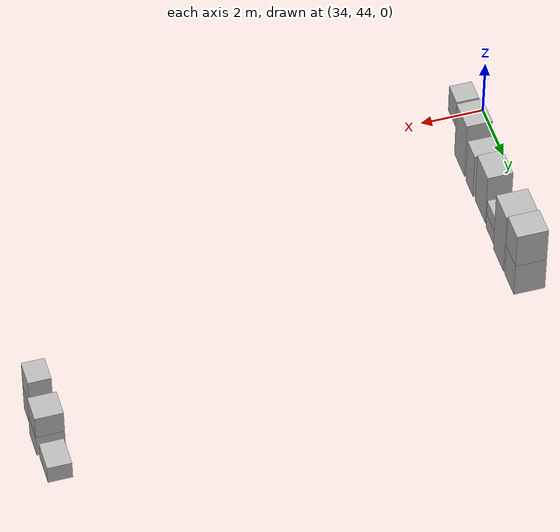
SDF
<sdf version="1.5">
 <world name="default">
  <model name="ground_plane">
   <static>true</static>
   <link name="link">
    <collision name="collision">
     <geometry><plane><normal>0 0 1</normal><size>250 250</size></plane></geometry>
     <surface><friction><ode><mu>1</mu><mu2>1</mu2></ode></friction></surface>
    </collision>
    <visual name="grass">
     <cast_shadows>false</cast_shadows>
     <geometry><mesh><uri>file://grass_plane/meshes/grass_plane.dae</uri></mesh></geometry>
    </visual>
   </link>
  </model>
  <model name="Cardboard_box_top_640">
   <link name="link_0">
    <pose>35 45 1.03619564257 0 0 0</pose>
    <inertial>
     <mass>1</mass>
     <inertia>
      <ixx>0.166667</ixx>
      <ixy>0</ixy>
      <ixz>0</ixz>
      <iyy>0.166667</iyy>
      <iyz>0</iyz>
      <izz>0.166667</izz>
     </inertia>
    </inertial>
    <collision name="collision">
     <geometry>
      <mesh>
       <uri>model://Cardboard_box/meshes/cardboard_box.dae</uri>
       <scale>1.7727442685 1.81373828049 2.59048910642</scale>
      </mesh>
     </geometry>
    </collision>
    <visual name="visual">
     <geometry>
      <mesh>
       <uri>model://Cardboard_box/meshes/cardboard_box.dae</uri>
       <scale>1.7727442685 1.81373828049 2.59048910642</scale>
      </mesh>
     </geometry>
    </visual>
   </link>
   <static>1</static>
  </model>
  <model name="Cardboard_box_641">
   <link name="link_0">
    <pose>35 46 0 0 0 0</pose>
    <inertial>
     <mass>1</mass>
     <inertia>
      <ixx>0.166667</ixx>
      <ixy>0</ixy>
      <ixz>0</ixz>
      <iyy>0.166667</iyy>
      <iyz>0</iyz>
      <izz>0.166667</izz>
     </inertia>
    </inertial>
    <collision name="collision">
     <geometry>
      <mesh>
       <uri>model://Cardboard_box/meshes/cardboard_box.dae</uri>
       <scale>2.02842144895 2.48058564449 5.44605178965</scale>
      </mesh>
     </geometry>
    </collision>
    <visual name="visual">
     <geometry>
      <mesh>
       <uri>model://Cardboard_box/meshes/cardboard_box.dae</uri>
       <scale>2.02842144895 2.48058564449 5.44605178965</scale>
      </mesh>
     </geometry>
    </visual>
   </link>
   <static>1</static>
  </model>
  <model name="Cardboard_box_642">
   <link name="link_0">
    <pose>35 47 0 0 0 0</pose>
    <inertial>
     <mass>1</mass>
     <inertia>
      <ixx>0.166667</ixx>
      <ixy>0</ixy>
      <ixz>0</ixz>
      <iyy>0.166667</iyy>
      <iyz>0</iyz>
      <izz>0.166667</izz>
     </inertia>
    </inertial>
    <collision name="collision">
     <geometry>
      <mesh>
       <uri>model://Cardboard_box/meshes/cardboard_box.dae</uri>
       <scale>2.08091185509 1.72966626313 4.2891665481</scale>
      </mesh>
     </geometry>
    </collision>
    <visual name="visual">
     <geometry>
      <mesh>
       <uri>model://Cardboard_box/meshes/cardboard_box.dae</uri>
       <scale>2.08091185509 1.72966626313 4.2891665481</scale>
      </mesh>
     </geometry>
    </visual>
   </link>
   <static>1</static>
  </model>
  <model name="Cardboard_box_643">
   <link name="link_0">
    <pose>35 48 0 0 0 0</pose>
    <inertial>
     <mass>1</mass>
     <inertia>
      <ixx>0.166667</ixx>
      <ixy>0</ixy>
      <ixz>0</ixz>
      <iyy>0.166667</iyy>
      <iyz>0</iyz>
      <izz>0.166667</izz>
     </inertia>
    </inertial>
    <collision name="collision">
     <geometry>
      <mesh>
       <uri>model://Cardboard_box/meshes/cardboard_box.dae</uri>
       <scale>1.99773901196 2.46404920744 4.91384270036</scale>
      </mesh>
     </geometry>
    </collision>
    <visual name="visual">
     <geometry>
      <mesh>
       <uri>model://Cardboard_box/meshes/cardboard_box.dae</uri>
       <scale>1.99773901196 2.46404920744 4.91384270036</scale>
      </mesh>
     </geometry>
    </visual>
   </link>
   <static>1</static>
  </model>
  <model name="Cardboard_box_644">
   <link name="link_0">
    <pose>35 49 0 0 0 0</pose>
    <inertial>
     <mass>1</mass>
     <inertia>
      <ixx>0.166667</ixx>
      <ixy>0</ixy>
      <ixz>0</ixz>
      <iyy>0.166667</iyy>
      <iyz>0</iyz>
      <izz>0.166667</izz>
     </inertia>
    </inertial>
    <collision name="collision">
     <geometry>
      <mesh>
       <uri>model://Cardboard_box/meshes/cardboard_box.dae</uri>
       <scale>2.15853517267 1.83536087983 1.4387977736</scale>
      </mesh>
     </geometry>
    </collision>
    <visual name="visual">
     <geometry>
      <mesh>
       <uri>model://Cardboard_box/meshes/cardboard_box.dae</uri>
       <scale>2.15853517267 1.83536087983 1.4387977736</scale>
      </mesh>
     </geometry>
    </visual>
   </link>
   <static>1</static>
  </model>
  <model name="Cardboard_box_top_644">
   <link name="link_0">
    <pose>35 49 0.57551910944 0 0 0</pose>
    <inertial>
     <mass>1</mass>
     <inertia>
      <ixx>0.166667</ixx>
      <ixy>0</ixy>
      <ixz>0</ixz>
      <iyy>0.166667</iyy>
      <iyz>0</iyz>
      <izz>0.166667</izz>
     </inertia>
    </inertial>
    <collision name="collision">
     <geometry>
      <mesh>
       <uri>model://Cardboard_box/meshes/cardboard_box.dae</uri>
       <scale>2.15853517267 1.83536087983 1.4387977736</scale>
      </mesh>
     </geometry>
    </collision>
    <visual name="visual">
     <geometry>
      <mesh>
       <uri>model://Cardboard_box/meshes/cardboard_box.dae</uri>
       <scale>2.15853517267 1.83536087983 1.4387977736</scale>
      </mesh>
     </geometry>
    </visual>
   </link>
   <static>1</static>
  </model>
  <model name="Cardboard_box_645">
   <link name="link_0">
    <pose>35 50 0 0 0 0</pose>
    <inertial>
     <mass>1</mass>
     <inertia>
      <ixx>0.166667</ixx>
      <ixy>0</ixy>
      <ixz>0</ixz>
      <iyy>0.166667</iyy>
      <iyz>0</iyz>
      <izz>0.166667</izz>
     </inertia>
    </inertial>
    <collision name="collision">
     <geometry>
      <mesh>
       <uri>model://Cardboard_box/meshes/cardboard_box.dae</uri>
       <scale>2.45480826596 2.39421072906 5.83259460459</scale>
      </mesh>
     </geometry>
    </collision>
    <visual name="visual">
     <geometry>
      <mesh>
       <uri>model://Cardboard_box/meshes/cardboard_box.dae</uri>
       <scale>2.45480826596 2.39421072906 5.83259460459</scale>
      </mesh>
     </geometry>
    </visual>
   </link>
   <static>1</static>
  </model>
  <model name="Cardboard_box_646">
   <link name="link_0">
    <pose>35 51 0 0 0 0</pose>
    <inertial>
     <mass>1</mass>
     <inertia>
      <ixx>0.166667</ixx>
      <ixy>0</ixy>
      <ixz>0</ixz>
      <iyy>0.166667</iyy>
      <iyz>0</iyz>
      <izz>0.166667</izz>
     </inertia>
    </inertial>
    <collision name="collision">
     <geometry>
      <mesh>
       <uri>model://Cardboard_box/meshes/cardboard_box.dae</uri>
       <scale>2.42336370489 2.16187229272 3.1173830822</scale>
      </mesh>
     </geometry>
    </collision>
    <visual name="visual">
     <geometry>
      <mesh>
       <uri>model://Cardboard_box/meshes/cardboard_box.dae</uri>
       <scale>2.42336370489 2.16187229272 3.1173830822</scale>
      </mesh>
     </geometry>
    </visual>
   </link>
   <static>1</static>
  </model>
  <model name="Cardboard_box_top_646">
   <link name="link_0">
    <pose>35 51 1.24695323288 0 0 0</pose>
    <inertial>
     <mass>1</mass>
     <inertia>
      <ixx>0.166667</ixx>
      <ixy>0</ixy>
      <ixz>0</ixz>
      <iyy>0.166667</iyy>
      <iyz>0</iyz>
      <izz>0.166667</izz>
     </inertia>
    </inertial>
    <collision name="collision">
     <geometry>
      <mesh>
       <uri>model://Cardboard_box/meshes/cardboard_box.dae</uri>
       <scale>2.42336370489 2.16187229272 3.1173830822</scale>
      </mesh>
     </geometry>
    </collision>
    <visual name="visual">
     <geometry>
      <mesh>
       <uri>model://Cardboard_box/meshes/cardboard_box.dae</uri>
       <scale>2.42336370489 2.16187229272 3.1173830822</scale>
      </mesh>
     </geometry>
    </visual>
   </link>
   <static>1</static>
  </model>
  <model name="Cardboard_box_647">
   <link name="link_0">
    <pose>50 52 0 0 0 0</pose>
    <inertial>
     <mass>1</mass>
     <inertia>
      <ixx>0.166667</ixx>
      <ixy>0</ixy>
      <ixz>0</ixz>
      <iyy>0.166667</iyy>
      <iyz>0</iyz>
      <izz>0.166667</izz>
     </inertia>
    </inertial>
    <collision name="collision">
     <geometry>
      <mesh>
       <uri>model://Cardboard_box/meshes/cardboard_box.dae</uri>
       <scale>1.73122825948 1.98969040634 2.47734739034</scale>
      </mesh>
     </geometry>
    </collision>
    <visual name="visual">
     <geometry>
      <mesh>
       <uri>model://Cardboard_box/meshes/cardboard_box.dae</uri>
       <scale>1.73122825948 1.98969040634 2.47734739034</scale>
      </mesh>
     </geometry>
    </visual>
   </link>
   <static>1</static>
  </model>
  <model name="Cardboard_box_top_647">
   <link name="link_0">
    <pose>50 52 0.990938956138 0 0 0</pose>
    <inertial>
     <mass>1</mass>
     <inertia>
      <ixx>0.166667</ixx>
      <ixy>0</ixy>
      <ixz>0</ixz>
      <iyy>0.166667</iyy>
      <iyz>0</iyz>
      <izz>0.166667</izz>
     </inertia>
    </inertial>
    <collision name="collision">
     <geometry>
      <mesh>
       <uri>model://Cardboard_box/meshes/cardboard_box.dae</uri>
       <scale>1.73122825948 1.98969040634 2.47734739034</scale>
      </mesh>
     </geometry>
    </collision>
    <visual name="visual">
     <geometry>
      <mesh>
       <uri>model://Cardboard_box/meshes/cardboard_box.dae</uri>
       <scale>1.73122825948 1.98969040634 2.47734739034</scale>
      </mesh>
     </geometry>
    </visual>
   </link>
   <static>1</static>
  </model>
  <model name="Cardboard_box_648">
   <link name="link_0">
    <pose>50 53 0 0 0 0</pose>
    <inertial>
     <mass>1</mass>
     <inertia>
      <ixx>0.166667</ixx>
      <ixy>0</ixy>
      <ixz>0</ixz>
      <iyy>0.166667</iyy>
      <iyz>0</iyz>
      <izz>0.166667</izz>
     </inertia>
    </inertial>
    <collision name="collision">
     <geometry>
      <mesh>
       <uri>model://Cardboard_box/meshes/cardboard_box.dae</uri>
       <scale>2.14490470184 2.0772771345 1.99005573325</scale>
      </mesh>
     </geometry>
    </collision>
    <visual name="visual">
     <geometry>
      <mesh>
       <uri>model://Cardboard_box/meshes/cardboard_box.dae</uri>
       <scale>2.14490470184 2.0772771345 1.99005573325</scale>
      </mesh>
     </geometry>
    </visual>
   </link>
   <static>1</static>
  </model>
  <model name="Cardboard_box_top_648">
   <link name="link_0">
    <pose>50 53 0.796022293299 0 0 0</pose>
    <inertial>
     <mass>1</mass>
     <inertia>
      <ixx>0.166667</ixx>
      <ixy>0</ixy>
      <ixz>0</ixz>
      <iyy>0.166667</iyy>
      <iyz>0</iyz>
      <izz>0.166667</izz>
     </inertia>
    </inertial>
    <collision name="collision">
     <geometry>
      <mesh>
       <uri>model://Cardboard_box/meshes/cardboard_box.dae</uri>
       <scale>2.14490470184 2.0772771345 1.99005573325</scale>
      </mesh>
     </geometry>
    </collision>
    <visual name="visual">
     <geometry>
      <mesh>
       <uri>model://Cardboard_box/meshes/cardboard_box.dae</uri>
       <scale>2.14490470184 2.0772771345 1.99005573325</scale>
      </mesh>
     </geometry>
    </visual>
   </link>
   <static>1</static>
  </model>
  <model name="Cardboard_box_649">
   <link name="link_0">
    <pose>50 54 0 0 0 0</pose>
    <inertial>
     <mass>1</mass>
     <inertia>
      <ixx>0.166667</ixx>
      <ixy>0</ixy>
      <ixz>0</ixz>
      <iyy>0.166667</iyy>
      <iyz>0</iyz>
      <izz>0.166667</izz>
     </inertia>
    </inertial>
    <collision name="collision">
     <geometry>
      <mesh>
       <uri>model://Cardboard_box/meshes/cardboard_box.dae</uri>
       <scale>1.8310984928 2.35704234418 1.57050502461</scale>
      </mesh>
     </geometry>
    </collision>
    <visual name="visual">
     <geometry>
      <mesh>
       <uri>model://Cardboard_box/meshes/cardboard_box.dae</uri>
       <scale>1.8310984928 2.35704234418 1.57050502461</scale>
      </mesh>
     </geometry>
    </visual>
   </link>
   <static>1</static>
  </model>
 </world>
</sdf>
